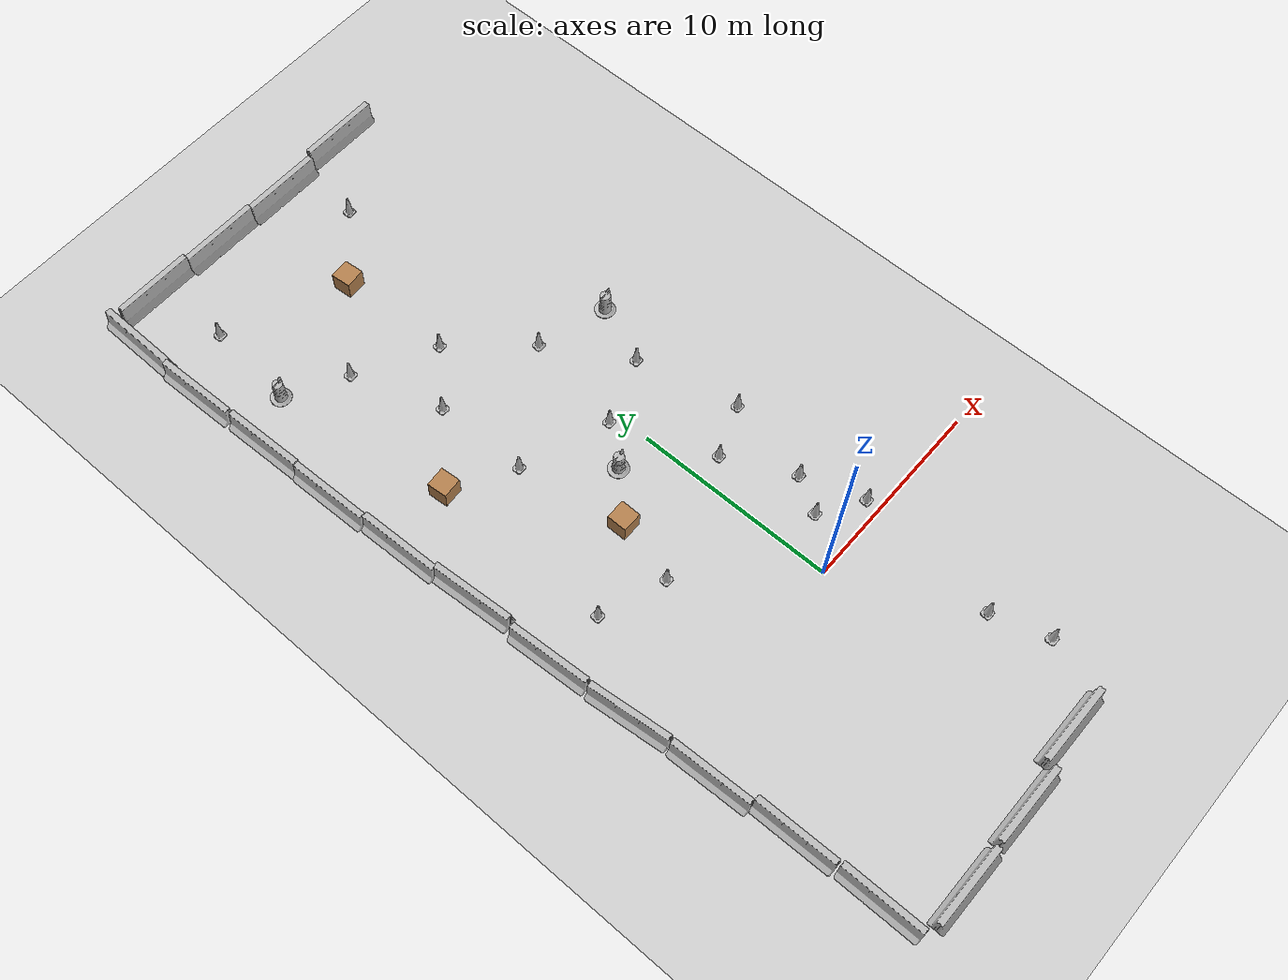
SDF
<sdf version="1.4">
 <world name="default">
  <model name="ground_plane">
   <static>1</static>
   <link name="link">
    <collision name="collision">
     <geometry><plane><normal>0 0 1</normal><size>100 100</size></plane></geometry>
     <surface><friction><ode><mu>100</mu><mu2>50</mu2></ode></friction></surface>
    </collision>
    <visual name="visual">
     <cast_shadows>0</cast_shadows>
     <geometry><plane><normal>0 0 1</normal><size>100 100</size></plane></geometry>
     <material>
      <script><uri>file://media/materials/scripts/gazebo.material</uri><name>Gazebo/Grey</name></script>
     </material>
    </visual>
    <velocity_decay><linear>0</linear><angular>0</angular></velocity_decay>
   </link>
  </model>
  <model name="unit_box_1">
   <pose>-3 26 0.5 0 -0 0.083754</pose>
   <link name="link">
    <inertial>
     <mass>1</mass>
     <inertia><ixx>1</ixx><ixy>0</ixy><ixz>0</ixz><iyy>1</iyy><iyz>0</iyz><izz>1</izz></inertia>
    </inertial>
    <collision name="collision"><geometry><box><size>1 1 1</size></box></geometry></collision>
    <visual name="visual">
     <geometry><box><size>1 1 1</size></box></geometry>
     <material>
      <script><uri>file://media/materials/scripts/gazebo.material</uri><name>Gazebo/Wood</name></script>
     </material>
    </visual>
    <velocity_decay><linear>0</linear><angular>0</angular></velocity_decay>
   </link>
   <static>0</static>
  </model>
  <model name="unit_box_3">
   <pose>-8 15 0.5 0 -0 0.083754</pose>
   <link name="link">
    <inertial>
     <mass>1</mass>
     <inertia><ixx>1</ixx><ixy>0</ixy><ixz>0</ixz><iyy>1</iyy><iyz>0</iyz><izz>1</izz></inertia>
    </inertial>
    <collision name="collision"><geometry><box><size>1 1 1</size></box></geometry></collision>
    <visual name="visual">
     <geometry><box><size>1 1 1</size></box></geometry>
     <material>
      <script><uri>file://media/materials/scripts/gazebo.material</uri><name>Gazebo/Wood</name></script>
     </material>
    </visual>
    <velocity_decay><linear>0</linear><angular>0</angular></velocity_decay>
   </link>
   <static>0</static>
  </model>
  <model name="jersey_barrier">
   <static>1</static>
   <link name="link">
    <visual name="visual">
     <geometry><mesh><uri>model://jersey_barrier/meshes/jersey_barrier.dae</uri></mesh></geometry>
    </visual>
    <collision name="upright">
     <pose>0 0 0.5715 0 -0 0</pose>
     <geometry><box><size>4.06542 0.3063 1.143</size></box></geometry>
    </collision>
    <collision name="base">
     <pose>0 0 0.032258 0 -0 0</pose>
     <geometry><box><size>4.06542 0.8107 0.064516</size></box></geometry>
    </collision>
    <collision name="base2">
     <pose>0 0 0.1 0 -0 0</pose>
     <geometry><box><size>4.06542 0.65 0.1</size></box></geometry>
    </collision>
    <collision name="base3">
     <pose>0 0 0.2 0 -0 0</pose>
     <geometry><box><size>4.06542 0.5 0.1</size></box></geometry>
    </collision>
    <collision name="left-angle">
     <pose>0 -0.224 0.2401 0.9 -0 0</pose>
     <geometry><box><size>4.06542 0.5 0.064516</size></box></geometry>
    </collision>
    <collision name="right-angle">
     <pose>0 0.224 0.2401 -0.9 0 0</pose>
     <geometry><box><size>4.06542 0.5 0.064516</size></box></geometry>
    </collision>
    <velocity_decay><linear>0</linear><angular>0</angular></velocity_decay>
   </link>
   <pose>-7.26215 -12.5985 0 0 -0 0</pose>
  </model>
  <model name="jersey_barrier_0">
   <static>1</static>
   <link name="link">
    <visual name="visual">
     <geometry><mesh><uri>model://jersey_barrier/meshes/jersey_barrier.dae</uri></mesh></geometry>
    </visual>
    <collision name="upright">
     <pose>0 0 0.5715 0 -0 0</pose>
     <geometry><box><size>4.06542 0.3063 1.143</size></box></geometry>
    </collision>
    <collision name="base">
     <pose>0 0 0.032258 0 -0 0</pose>
     <geometry><box><size>4.06542 0.8107 0.064516</size></box></geometry>
    </collision>
    <collision name="base2">
     <pose>0 0 0.1 0 -0 0</pose>
     <geometry><box><size>4.06542 0.65 0.1</size></box></geometry>
    </collision>
    <collision name="base3">
     <pose>0 0 0.2 0 -0 0</pose>
     <geometry><box><size>4.06542 0.5 0.1</size></box></geometry>
    </collision>
    <collision name="left-angle">
     <pose>0 -0.224 0.2401 0.9 -0 0</pose>
     <geometry><box><size>4.06542 0.5 0.064516</size></box></geometry>
    </collision>
    <collision name="right-angle">
     <pose>0 0.224 0.2401 -0.9 0 0</pose>
     <geometry><box><size>4.06542 0.5 0.064516</size></box></geometry>
    </collision>
    <velocity_decay><linear>0</linear><angular>0</angular></velocity_decay>
   </link>
   <pose>-3 -12.5184 0 0 -0 0</pose>
  </model>
  <model name="jersey_barrier_1">
   <static>1</static>
   <link name="link">
    <visual name="visual">
     <geometry><mesh><uri>model://jersey_barrier/meshes/jersey_barrier.dae</uri></mesh></geometry>
    </visual>
    <collision name="upright">
     <pose>0 0 0.5715 0 -0 0</pose>
     <geometry><box><size>4.06542 0.3063 1.143</size></box></geometry>
    </collision>
    <collision name="base">
     <pose>0 0 0.032258 0 -0 0</pose>
     <geometry><box><size>4.06542 0.8107 0.064516</size></box></geometry>
    </collision>
    <collision name="base2">
     <pose>0 0 0.1 0 -0 0</pose>
     <geometry><box><size>4.06542 0.65 0.1</size></box></geometry>
    </collision>
    <collision name="base3">
     <pose>0 0 0.2 0 -0 0</pose>
     <geometry><box><size>4.06542 0.5 0.1</size></box></geometry>
    </collision>
    <collision name="left-angle">
     <pose>0 -0.224 0.2401 0.9 -0 0</pose>
     <geometry><box><size>4.06542 0.5 0.064516</size></box></geometry>
    </collision>
    <collision name="right-angle">
     <pose>0 0.224 0.2401 -0.9 0 0</pose>
     <geometry><box><size>4.06542 0.5 0.064516</size></box></geometry>
    </collision>
    <velocity_decay><linear>0</linear><angular>0</angular></velocity_decay>
   </link>
   <pose>1 -12 0 0 -0 0</pose>
  </model>
  <model name="jersey_barrier_5">
   <static>1</static>
   <link name="link">
    <visual name="visual">
     <geometry><mesh><uri>model://jersey_barrier/meshes/jersey_barrier.dae</uri></mesh></geometry>
    </visual>
    <collision name="upright">
     <pose>0 0 0.5715 0 -0 0</pose>
     <geometry><box><size>4.06542 0.3063 1.143</size></box></geometry>
    </collision>
    <collision name="base">
     <pose>0 0 0.032258 0 -0 0</pose>
     <geometry><box><size>4.06542 0.8107 0.064516</size></box></geometry>
    </collision>
    <collision name="base2">
     <pose>0 0 0.1 0 -0 0</pose>
     <geometry><box><size>4.06542 0.65 0.1</size></box></geometry>
    </collision>
    <collision name="base3">
     <pose>0 0 0.2 0 -0 0</pose>
     <geometry><box><size>4.06542 0.5 0.1</size></box></geometry>
    </collision>
    <collision name="left-angle">
     <pose>0 -0.224 0.2401 0.9 -0 0</pose>
     <geometry><box><size>4.06542 0.5 0.064516</size></box></geometry>
    </collision>
    <collision name="right-angle">
     <pose>0 0.224 0.2401 -0.9 0 0</pose>
     <geometry><box><size>4.06542 0.5 0.064516</size></box></geometry>
    </collision>
    <velocity_decay><linear>0</linear><angular>0</angular></velocity_decay>
   </link>
   <pose>-9.43035 32.377 0 0 -0 0</pose>
  </model>
  <model name="jersey_barrier_6">
   <static>1</static>
   <link name="link">
    <visual name="visual">
     <geometry><mesh><uri>model://jersey_barrier/meshes/jersey_barrier.dae</uri></mesh></geometry>
    </visual>
    <collision name="upright">
     <pose>0 0 0.5715 0 -0 0</pose>
     <geometry><box><size>4.06542 0.3063 1.143</size></box></geometry>
    </collision>
    <collision name="base">
     <pose>0 0 0.032258 0 -0 0</pose>
     <geometry><box><size>4.06542 0.8107 0.064516</size></box></geometry>
    </collision>
    <collision name="base2">
     <pose>0 0 0.1 0 -0 0</pose>
     <geometry><box><size>4.06542 0.65 0.1</size></box></geometry>
    </collision>
    <collision name="base3">
     <pose>0 0 0.2 0 -0 0</pose>
     <geometry><box><size>4.06542 0.5 0.1</size></box></geometry>
    </collision>
    <collision name="left-angle">
     <pose>0 -0.224 0.2401 0.9 -0 0</pose>
     <geometry><box><size>4.06542 0.5 0.064516</size></box></geometry>
    </collision>
    <collision name="right-angle">
     <pose>0 0.224 0.2401 -0.9 0 0</pose>
     <geometry><box><size>4.06542 0.5 0.064516</size></box></geometry>
    </collision>
    <velocity_decay><linear>0</linear><angular>0</angular></velocity_decay>
   </link>
   <pose>-5.41368 32.195 0 0 -0 0</pose>
  </model>
  <model name="jersey_barrier_7">
   <static>1</static>
   <link name="link">
    <visual name="visual">
     <geometry><mesh><uri>model://jersey_barrier/meshes/jersey_barrier.dae</uri></mesh></geometry>
    </visual>
    <collision name="upright">
     <pose>0 0 0.5715 0 -0 0</pose>
     <geometry><box><size>4.06542 0.3063 1.143</size></box></geometry>
    </collision>
    <collision name="base">
     <pose>0 0 0.032258 0 -0 0</pose>
     <geometry><box><size>4.06542 0.8107 0.064516</size></box></geometry>
    </collision>
    <collision name="base2">
     <pose>0 0 0.1 0 -0 0</pose>
     <geometry><box><size>4.06542 0.65 0.1</size></box></geometry>
    </collision>
    <collision name="base3">
     <pose>0 0 0.2 0 -0 0</pose>
     <geometry><box><size>4.06542 0.5 0.1</size></box></geometry>
    </collision>
    <collision name="left-angle">
     <pose>0 -0.224 0.2401 0.9 -0 0</pose>
     <geometry><box><size>4.06542 0.5 0.064516</size></box></geometry>
    </collision>
    <collision name="right-angle">
     <pose>0 0.224 0.2401 -0.9 0 0</pose>
     <geometry><box><size>4.06542 0.5 0.064516</size></box></geometry>
    </collision>
    <velocity_decay><linear>0</linear><angular>0</angular></velocity_decay>
   </link>
   <pose>-1.41387 32.1048 0 0 -0 0</pose>
  </model>
  <model name="jersey_barrier_8">
   <static>1</static>
   <link name="link">
    <visual name="visual">
     <geometry><mesh><uri>model://jersey_barrier/meshes/jersey_barrier.dae</uri></mesh></geometry>
    </visual>
    <collision name="upright">
     <pose>0 0 0.5715 0 -0 0</pose>
     <geometry><box><size>4.06542 0.3063 1.143</size></box></geometry>
    </collision>
    <collision name="base">
     <pose>0 0 0.032258 0 -0 0</pose>
     <geometry><box><size>4.06542 0.8107 0.064516</size></box></geometry>
    </collision>
    <collision name="base2">
     <pose>0 0 0.1 0 -0 0</pose>
     <geometry><box><size>4.06542 0.65 0.1</size></box></geometry>
    </collision>
    <collision name="base3">
     <pose>0 0 0.2 0 -0 0</pose>
     <geometry><box><size>4.06542 0.5 0.1</size></box></geometry>
    </collision>
    <collision name="left-angle">
     <pose>0 -0.224 0.2401 0.9 -0 0</pose>
     <geometry><box><size>4.06542 0.5 0.064516</size></box></geometry>
    </collision>
    <collision name="right-angle">
     <pose>0 0.224 0.2401 -0.9 0 0</pose>
     <geometry><box><size>4.06542 0.5 0.064516</size></box></geometry>
    </collision>
    <velocity_decay><linear>0</linear><angular>0</angular></velocity_decay>
   </link>
   <pose>2.78467 32.4012 0 0 -0 0</pose>
  </model>
  <model name="jersey_barrier_15">
   <static>1</static>
   <link name="link">
    <visual name="visual">
     <geometry><mesh><uri>model://jersey_barrier/meshes/jersey_barrier.dae</uri></mesh></geometry>
    </visual>
    <collision name="upright">
     <pose>0 0 0.5715 0 -0 0</pose>
     <geometry><box><size>4.06542 0.3063 1.143</size></box></geometry>
    </collision>
    <collision name="base">
     <pose>0 0 0.032258 0 -0 0</pose>
     <geometry><box><size>4.06542 0.8107 0.064516</size></box></geometry>
    </collision>
    <collision name="base2">
     <pose>0 0 0.1 0 -0 0</pose>
     <geometry><box><size>4.06542 0.65 0.1</size></box></geometry>
    </collision>
    <collision name="base3">
     <pose>0 0 0.2 0 -0 0</pose>
     <geometry><box><size>4.06542 0.5 0.1</size></box></geometry>
    </collision>
    <collision name="left-angle">
     <pose>0 -0.224 0.2401 0.9 -0 0</pose>
     <geometry><box><size>4.06542 0.5 0.064516</size></box></geometry>
    </collision>
    <collision name="right-angle">
     <pose>0 0.224 0.2401 -0.9 0 0</pose>
     <geometry><box><size>4.06542 0.5 0.064516</size></box></geometry>
    </collision>
    <velocity_decay><linear>0</linear><angular>0</angular></velocity_decay>
   </link>
   <pose>-10.907 6.17584 0 0 -0 1.63254</pose>
  </model>
  <model name="jersey_barrier_16">
   <static>1</static>
   <link name="link">
    <visual name="visual">
     <geometry><mesh><uri>model://jersey_barrier/meshes/jersey_barrier.dae</uri></mesh></geometry>
    </visual>
    <collision name="upright">
     <pose>0 0 0.5715 0 -0 0</pose>
     <geometry><box><size>4.06542 0.3063 1.143</size></box></geometry>
    </collision>
    <collision name="base">
     <pose>0 0 0.032258 0 -0 0</pose>
     <geometry><box><size>4.06542 0.8107 0.064516</size></box></geometry>
    </collision>
    <collision name="base2">
     <pose>0 0 0.1 0 -0 0</pose>
     <geometry><box><size>4.06542 0.65 0.1</size></box></geometry>
    </collision>
    <collision name="base3">
     <pose>0 0 0.2 0 -0 0</pose>
     <geometry><box><size>4.06542 0.5 0.1</size></box></geometry>
    </collision>
    <collision name="left-angle">
     <pose>0 -0.224 0.2401 0.9 -0 0</pose>
     <geometry><box><size>4.06542 0.5 0.064516</size></box></geometry>
    </collision>
    <collision name="right-angle">
     <pose>0 0.224 0.2401 -0.9 0 0</pose>
     <geometry><box><size>4.06542 0.5 0.064516</size></box></geometry>
    </collision>
    <velocity_decay><linear>0</linear><angular>0</angular></velocity_decay>
   </link>
   <pose>-10.6126 2.01572 0 0 -0 1.67324</pose>
  </model>
  <model name="jersey_barrier_17">
   <static>1</static>
   <link name="link">
    <visual name="visual">
     <geometry><mesh><uri>model://jersey_barrier/meshes/jersey_barrier.dae</uri></mesh></geometry>
    </visual>
    <collision name="upright">
     <pose>0 0 0.5715 0 -0 0</pose>
     <geometry><box><size>4.06542 0.3063 1.143</size></box></geometry>
    </collision>
    <collision name="base">
     <pose>0 0 0.032258 0 -0 0</pose>
     <geometry><box><size>4.06542 0.8107 0.064516</size></box></geometry>
    </collision>
    <collision name="base2">
     <pose>0 0 0.1 0 -0 0</pose>
     <geometry><box><size>4.06542 0.65 0.1</size></box></geometry>
    </collision>
    <collision name="base3">
     <pose>0 0 0.2 0 -0 0</pose>
     <geometry><box><size>4.06542 0.5 0.1</size></box></geometry>
    </collision>
    <collision name="left-angle">
     <pose>0 -0.224 0.2401 0.9 -0 0</pose>
     <geometry><box><size>4.06542 0.5 0.064516</size></box></geometry>
    </collision>
    <collision name="right-angle">
     <pose>0 0.224 0.2401 -0.9 0 0</pose>
     <geometry><box><size>4.06542 0.5 0.064516</size></box></geometry>
    </collision>
    <velocity_decay><linear>0</linear><angular>0</angular></velocity_decay>
   </link>
   <pose>-10.3644 -2.14271 0 0 -0 1.60702</pose>
  </model>
  <model name="jersey_barrier_18">
   <static>1</static>
   <link name="link">
    <visual name="visual">
     <geometry><mesh><uri>model://jersey_barrier/meshes/jersey_barrier.dae</uri></mesh></geometry>
    </visual>
    <collision name="upright">
     <pose>0 0 0.5715 0 -0 0</pose>
     <geometry><box><size>4.06542 0.3063 1.143</size></box></geometry>
    </collision>
    <collision name="base">
     <pose>0 0 0.032258 0 -0 0</pose>
     <geometry><box><size>4.06542 0.8107 0.064516</size></box></geometry>
    </collision>
    <collision name="base2">
     <pose>0 0 0.1 0 -0 0</pose>
     <geometry><box><size>4.06542 0.65 0.1</size></box></geometry>
    </collision>
    <collision name="base3">
     <pose>0 0 0.2 0 -0 0</pose>
     <geometry><box><size>4.06542 0.5 0.1</size></box></geometry>
    </collision>
    <collision name="left-angle">
     <pose>0 -0.224 0.2401 0.9 -0 0</pose>
     <geometry><box><size>4.06542 0.5 0.064516</size></box></geometry>
    </collision>
    <collision name="right-angle">
     <pose>0 0.224 0.2401 -0.9 0 0</pose>
     <geometry><box><size>4.06542 0.5 0.064516</size></box></geometry>
    </collision>
    <velocity_decay><linear>0</linear><angular>0</angular></velocity_decay>
   </link>
   <pose>-9.98265 -6.18571 0 0 -0 1.58701</pose>
  </model>
  <model name="jersey_barrier_19">
   <static>1</static>
   <link name="link">
    <visual name="visual">
     <geometry><mesh><uri>model://jersey_barrier/meshes/jersey_barrier.dae</uri></mesh></geometry>
    </visual>
    <collision name="upright">
     <pose>0 0 0.5715 0 -0 0</pose>
     <geometry><box><size>4.06542 0.3063 1.143</size></box></geometry>
    </collision>
    <collision name="base">
     <pose>0 0 0.032258 0 -0 0</pose>
     <geometry><box><size>4.06542 0.8107 0.064516</size></box></geometry>
    </collision>
    <collision name="base2">
     <pose>0 0 0.1 0 -0 0</pose>
     <geometry><box><size>4.06542 0.65 0.1</size></box></geometry>
    </collision>
    <collision name="base3">
     <pose>0 0 0.2 0 -0 0</pose>
     <geometry><box><size>4.06542 0.5 0.1</size></box></geometry>
    </collision>
    <collision name="left-angle">
     <pose>0 -0.224 0.2401 0.9 -0 0</pose>
     <geometry><box><size>4.06542 0.5 0.064516</size></box></geometry>
    </collision>
    <collision name="right-angle">
     <pose>0 0.224 0.2401 -0.9 0 0</pose>
     <geometry><box><size>4.06542 0.5 0.064516</size></box></geometry>
    </collision>
    <velocity_decay><linear>0</linear><angular>0</angular></velocity_decay>
   </link>
   <pose>-9.85449 -10.3717 0 0 -0 1.57336</pose>
  </model>
  <model name="jersey_barrier_21">
   <static>1</static>
   <link name="link">
    <visual name="visual">
     <geometry><mesh><uri>model://jersey_barrier/meshes/jersey_barrier.dae</uri></mesh></geometry>
    </visual>
    <collision name="upright">
     <pose>0 0 0.5715 0 -0 0</pose>
     <geometry><box><size>4.06542 0.3063 1.143</size></box></geometry>
    </collision>
    <collision name="base">
     <pose>0 0 0.032258 0 -0 0</pose>
     <geometry><box><size>4.06542 0.8107 0.064516</size></box></geometry>
    </collision>
    <collision name="base2">
     <pose>0 0 0.1 0 -0 0</pose>
     <geometry><box><size>4.06542 0.65 0.1</size></box></geometry>
    </collision>
    <collision name="base3">
     <pose>0 0 0.2 0 -0 0</pose>
     <geometry><box><size>4.06542 0.5 0.1</size></box></geometry>
    </collision>
    <collision name="left-angle">
     <pose>0 -0.224 0.2401 0.9 -0 0</pose>
     <geometry><box><size>4.06542 0.5 0.064516</size></box></geometry>
    </collision>
    <collision name="right-angle">
     <pose>0 0.224 0.2401 -0.9 0 0</pose>
     <geometry><box><size>4.06542 0.5 0.064516</size></box></geometry>
    </collision>
    <velocity_decay><linear>0</linear><angular>0</angular></velocity_decay>
   </link>
   <pose>-10.9991 10.488 0 0 -0 1.64124</pose>
  </model>
  <model name="Construction Cone_2">
   <link name="link">
    <collision name="collision">
     <geometry>
      <mesh><scale>10 10 10</scale><uri>model://construction_cone/meshes/construction_cone.dae</uri></mesh>
     </geometry>
    </collision>
    <visual name="visual">
     <geometry>
      <mesh><scale>10 10 10</scale><uri>model://construction_cone/meshes/construction_cone.dae</uri></mesh>
     </geometry>
    </visual>
    <velocity_decay><linear>0</linear><angular>0</angular></velocity_decay>
    <inertial>
     <inertia><ixx>1</ixx><ixy>0</ixy><ixz>0</ixz><iyy>1</iyy><iyz>0</iyz><izz>1</izz></inertia>
     <mass>1</mass>
    </inertial>
   </link>
   <pose>2.80714 13.059 0 1e-06 -0 0</pose>
   <static>0</static>
  </model>
  <model name="Construction Cone_6">
   <link name="link">
    <collision name="collision">
     <geometry>
      <mesh><scale>10 10 10</scale><uri>model://construction_cone/meshes/construction_cone.dae</uri></mesh>
     </geometry>
    </collision>
    <visual name="visual">
     <geometry>
      <mesh><scale>10 10 10</scale><uri>model://construction_cone/meshes/construction_cone.dae</uri></mesh>
     </geometry>
    </visual>
    <velocity_decay><linear>0</linear><angular>0</angular></velocity_decay>
    <inertial>
     <inertia><ixx>1</ixx><ixy>0</ixy><ixz>0</ixz><iyy>1</iyy><iyz>0</iyz><izz>1</izz></inertia>
     <mass>1</mass>
    </inertial>
   </link>
   <pose>-4.93524 13.3394 -2e-06 0 1e-06 0</pose>
   <static>0</static>
  </model>
  <model name="Construction Cone_8">
   <link name="link">
    <collision name="collision">
     <geometry>
      <mesh><scale>10 10 10</scale><uri>model://construction_cone/meshes/construction_cone.dae</uri></mesh>
     </geometry>
    </collision>
    <visual name="visual">
     <geometry>
      <mesh><scale>10 10 10</scale><uri>model://construction_cone/meshes/construction_cone.dae</uri></mesh>
     </geometry>
    </visual>
    <velocity_decay><linear>0</linear><angular>0</angular></velocity_decay>
    <inertial>
     <inertia><ixx>1</ixx><ixy>0</ixy><ixz>0</ixz><iyy>1</iyy><iyz>0</iyz><izz>1</izz></inertia>
     <mass>1</mass>
    </inertial>
   </link>
   <pose>-6.51042 22.4224 -2e-06 -1e-06 -0 -0</pose>
   <static>0</static>
  </model>
  <model name="Construction Cone_9">
   <link name="link">
    <collision name="collision">
     <geometry>
      <mesh><scale>10 10 10</scale><uri>model://construction_cone/meshes/construction_cone.dae</uri></mesh>
     </geometry>
    </collision>
    <visual name="visual">
     <geometry>
      <mesh><scale>10 10 10</scale><uri>model://construction_cone/meshes/construction_cone.dae</uri></mesh>
     </geometry>
    </visual>
    <velocity_decay><linear>0</linear><angular>0</angular></velocity_decay>
    <inertial>
     <inertia><ixx>1</ixx><ixy>0</ixy><ixz>0</ixz><iyy>1</iyy><iyz>0</iyz><izz>1</izz></inertia>
     <mass>1</mass>
    </inertial>
   </link>
   <pose>-4.76601 4.88386 -1e-06 -2e-06 -1e-06 8.07794e-28</pose>
   <static>0</static>
  </model>
  <model name="Construction Cone_10">
   <link name="link">
    <collision name="collision">
     <geometry>
      <mesh><scale>10 10 10</scale><uri>model://construction_cone/meshes/construction_cone.dae</uri></mesh>
     </geometry>
    </collision>
    <visual name="visual">
     <geometry>
      <mesh><scale>10 10 10</scale><uri>model://construction_cone/meshes/construction_cone.dae</uri></mesh>
     </geometry>
    </visual>
    <velocity_decay><linear>0</linear><angular>0</angular></velocity_decay>
    <inertial>
     <inertia><ixx>1</ixx><ixy>0</ixy><ixz>0</ixz><iyy>1</iyy><iyz>0</iyz><izz>1</izz></inertia>
     <mass>1</mass>
    </inertial>
   </link>
   <pose>3.03317 3.70489 -0 0 -1e-06 0</pose>
   <static>0</static>
  </model>
  <model name="Construction Cone_12">
   <link name="link">
    <collision name="collision">
     <geometry>
      <mesh><scale>10 10 10</scale><uri>model://construction_cone/meshes/construction_cone.dae</uri></mesh>
     </geometry>
    </collision>
    <visual name="visual">
     <geometry>
      <mesh><scale>10 10 10</scale><uri>model://construction_cone/meshes/construction_cone.dae</uri></mesh>
     </geometry>
    </visual>
    <velocity_decay><linear>0</linear><angular>0</angular></velocity_decay>
    <inertial>
     <inertia><ixx>1</ixx><ixy>0</ixy><ixz>0</ixz><iyy>1</iyy><iyz>0</iyz><izz>1</izz></inertia>
     <mass>1</mass>
    </inertial>
   </link>
   <pose>-0.487795 11.8459 -0 0 -1e-06 0</pose>
   <static>0</static>
  </model>
  <model name="Construction Cone_15">
   <link name="link">
    <collision name="collision">
     <geometry>
      <mesh><scale>10 10 10</scale><uri>model://construction_cone/meshes/construction_cone.dae</uri></mesh>
     </geometry>
    </collision>
    <visual name="visual">
     <geometry>
      <mesh><scale>10 10 10</scale><uri>model://construction_cone/meshes/construction_cone.dae</uri></mesh>
     </geometry>
    </visual>
    <velocity_decay><linear>0</linear><angular>0</angular></velocity_decay>
    <inertial>
     <inertia><ixx>1</ixx><ixy>0</ixy><ixz>0</ixz><iyy>1</iyy><iyz>0</iyz><izz>1</izz></inertia>
     <mass>1</mass>
    </inertial>
   </link>
   <pose>3.98191 -9.1742 -6e-06 5e-06 -7e-06 0</pose>
   <static>0</static>
  </model>
  <model name="Construction Cone_17">
   <link name="link">
    <collision name="collision">
     <geometry>
      <mesh><scale>10 10 10</scale><uri>model://construction_cone/meshes/construction_cone.dae</uri></mesh>
     </geometry>
    </collision>
    <visual name="visual">
     <geometry>
      <mesh><scale>10 10 10</scale><uri>model://construction_cone/meshes/construction_cone.dae</uri></mesh>
     </geometry>
    </visual>
    <velocity_decay><linear>0</linear><angular>0</angular></velocity_decay>
    <inertial>
     <inertia><ixx>1</ixx><ixy>0</ixy><ixz>0</ixz><iyy>1</iyy><iyz>0</iyz><izz>1</izz></inertia>
     <mass>1</mass>
    </inertial>
   </link>
   <pose>2 2 -1e-06 -2e-06 -3e-06 0</pose>
   <static>0</static>
  </model>
  <model name="Construction Cone_18">
   <link name="link">
    <collision name="collision">
     <geometry>
      <mesh><scale>10 10 10</scale><uri>model://construction_cone/meshes/construction_cone.dae</uri></mesh>
     </geometry>
    </collision>
    <visual name="visual">
     <geometry>
      <mesh><scale>10 10 10</scale><uri>model://construction_cone/meshes/construction_cone.dae</uri></mesh>
     </geometry>
    </visual>
    <velocity_decay><linear>0</linear><angular>0</angular></velocity_decay>
    <inertial>
     <inertia><ixx>1</ixx><ixy>0</ixy><ixz>0</ixz><iyy>1</iyy><iyz>0</iyz><izz>1</izz></inertia>
     <mass>1</mass>
    </inertial>
   </link>
   <pose>3.14498 -6.43429 -6e-06 -7e-06 0 0</pose>
   <static>0</static>
  </model>
  <model name="Construction Cone_20">
   <link name="link">
    <collision name="collision">
     <geometry>
      <mesh><scale>10 10 10</scale><uri>model://construction_cone/meshes/construction_cone.dae</uri></mesh>
     </geometry>
    </collision>
    <visual name="visual">
     <geometry>
      <mesh><scale>10 10 10</scale><uri>model://construction_cone/meshes/construction_cone.dae</uri></mesh>
     </geometry>
    </visual>
    <velocity_decay><linear>0</linear><angular>0</angular></velocity_decay>
    <inertial>
     <inertia><ixx>1</ixx><ixy>0</ixy><ixz>0</ixz><iyy>1</iyy><iyz>0</iyz><izz>1</izz></inertia>
     <mass>1</mass>
    </inertial>
   </link>
   <pose>1.42672 7 -0 0 -1e-06 0</pose>
   <static>0</static>
  </model>
  <model name="Construction Cone_23">
   <link name="link">
    <collision name="collision">
     <geometry>
      <mesh><scale>10 10 10</scale><uri>model://construction_cone/meshes/construction_cone.dae</uri></mesh>
     </geometry>
    </collision>
    <visual name="visual">
     <geometry>
      <mesh><scale>10 10 10</scale><uri>model://construction_cone/meshes/construction_cone.dae</uri></mesh>
     </geometry>
    </visual>
    <velocity_decay><linear>0</linear><angular>0</angular></velocity_decay>
    <inertial>
     <inertia><ixx>1</ixx><ixy>0</ixy><ixz>0</ixz><iyy>1</iyy><iyz>0</iyz><izz>1</izz></inertia>
     <mass>1</mass>
    </inertial>
   </link>
   <pose>4.05878 0.703394 -0 0 -1e-06 0</pose>
   <static>0</static>
  </model>
  <model name="jersey_barrier_22">
   <static>1</static>
   <link name="link">
    <visual name="visual">
     <geometry><mesh><uri>model://jersey_barrier/meshes/jersey_barrier.dae</uri></mesh></geometry>
    </visual>
    <collision name="upright">
     <pose>0 0 0.5715 0 -0 0</pose>
     <geometry><box><size>4.06542 0.3063 1.143</size></box></geometry>
    </collision>
    <collision name="base">
     <pose>0 0 0.032258 0 -0 0</pose>
     <geometry><box><size>4.06542 0.8107 0.064516</size></box></geometry>
    </collision>
    <collision name="base2">
     <pose>0 0 0.1 0 -0 0</pose>
     <geometry><box><size>4.06542 0.65 0.1</size></box></geometry>
    </collision>
    <collision name="base3">
     <pose>0 0 0.2 0 -0 0</pose>
     <geometry><box><size>4.06542 0.5 0.1</size></box></geometry>
    </collision>
    <collision name="left-angle">
     <pose>0 -0.224 0.2401 0.9 -0 0</pose>
     <geometry><box><size>4.06542 0.5 0.064516</size></box></geometry>
    </collision>
    <collision name="right-angle">
     <pose>0 0.224 0.2401 -0.9 0 0</pose>
     <geometry><box><size>4.06542 0.5 0.064516</size></box></geometry>
    </collision>
    <velocity_decay><linear>0</linear><angular>0</angular></velocity_decay>
   </link>
   <pose>-11.8547 30.7836 0 0 0 -1.58119</pose>
  </model>
  <model name="jersey_barrier_23">
   <static>1</static>
   <link name="link">
    <visual name="visual">
     <geometry><mesh><uri>model://jersey_barrier/meshes/jersey_barrier.dae</uri></mesh></geometry>
    </visual>
    <collision name="upright">
     <pose>0 0 0.5715 0 -0 0</pose>
     <geometry><box><size>4.06542 0.3063 1.143</size></box></geometry>
    </collision>
    <collision name="base">
     <pose>0 0 0.032258 0 -0 0</pose>
     <geometry><box><size>4.06542 0.8107 0.064516</size></box></geometry>
    </collision>
    <collision name="base2">
     <pose>0 0 0.1 0 -0 0</pose>
     <geometry><box><size>4.06542 0.65 0.1</size></box></geometry>
    </collision>
    <collision name="base3">
     <pose>0 0 0.2 0 -0 0</pose>
     <geometry><box><size>4.06542 0.5 0.1</size></box></geometry>
    </collision>
    <collision name="left-angle">
     <pose>0 -0.224 0.2401 0.9 -0 0</pose>
     <geometry><box><size>4.06542 0.5 0.064516</size></box></geometry>
    </collision>
    <collision name="right-angle">
     <pose>0 0.224 0.2401 -0.9 0 0</pose>
     <geometry><box><size>4.06542 0.5 0.064516</size></box></geometry>
    </collision>
    <velocity_decay><linear>0</linear><angular>0</angular></velocity_decay>
   </link>
   <pose>-11.7126 22.5439 0 0 0 -1.53593</pose>
  </model>
  <model name="jersey_barrier_24">
   <static>1</static>
   <link name="link">
    <visual name="visual">
     <geometry><mesh><uri>model://jersey_barrier/meshes/jersey_barrier.dae</uri></mesh></geometry>
    </visual>
    <collision name="upright">
     <pose>0 0 0.5715 0 -0 0</pose>
     <geometry><box><size>4.06542 0.3063 1.143</size></box></geometry>
    </collision>
    <collision name="base">
     <pose>0 0 0.032258 0 -0 0</pose>
     <geometry><box><size>4.06542 0.8107 0.064516</size></box></geometry>
    </collision>
    <collision name="base2">
     <pose>0 0 0.1 0 -0 0</pose>
     <geometry><box><size>4.06542 0.65 0.1</size></box></geometry>
    </collision>
    <collision name="base3">
     <pose>0 0 0.2 0 -0 0</pose>
     <geometry><box><size>4.06542 0.5 0.1</size></box></geometry>
    </collision>
    <collision name="left-angle">
     <pose>0 -0.224 0.2401 0.9 -0 0</pose>
     <geometry><box><size>4.06542 0.5 0.064516</size></box></geometry>
    </collision>
    <collision name="right-angle">
     <pose>0 0.224 0.2401 -0.9 0 0</pose>
     <geometry><box><size>4.06542 0.5 0.064516</size></box></geometry>
    </collision>
    <velocity_decay><linear>0</linear><angular>0</angular></velocity_decay>
   </link>
   <pose>-11.6255 18.4957 0 0 0 -1.53985</pose>
  </model>
  <model name="jersey_barrier_25">
   <static>1</static>
   <link name="link">
    <visual name="visual">
     <geometry><mesh><uri>model://jersey_barrier/meshes/jersey_barrier.dae</uri></mesh></geometry>
    </visual>
    <collision name="upright">
     <pose>0 0 0.5715 0 -0 0</pose>
     <geometry><box><size>4.06542 0.3063 1.143</size></box></geometry>
    </collision>
    <collision name="base">
     <pose>0 0 0.032258 0 -0 0</pose>
     <geometry><box><size>4.06542 0.8107 0.064516</size></box></geometry>
    </collision>
    <collision name="base2">
     <pose>0 0 0.1 0 -0 0</pose>
     <geometry><box><size>4.06542 0.65 0.1</size></box></geometry>
    </collision>
    <collision name="base3">
     <pose>0 0 0.2 0 -0 0</pose>
     <geometry><box><size>4.06542 0.5 0.1</size></box></geometry>
    </collision>
    <collision name="left-angle">
     <pose>0 -0.224 0.2401 0.9 -0 0</pose>
     <geometry><box><size>4.06542 0.5 0.064516</size></box></geometry>
    </collision>
    <collision name="right-angle">
     <pose>0 0.224 0.2401 -0.9 0 0</pose>
     <geometry><box><size>4.06542 0.5 0.064516</size></box></geometry>
    </collision>
    <velocity_decay><linear>0</linear><angular>0</angular></velocity_decay>
   </link>
   <pose>-11.3694 14.4529 0 0 0 -1.53529</pose>
  </model>
  <model name="jersey_barrier_26">
   <static>1</static>
   <link name="link">
    <visual name="visual">
     <geometry><mesh><uri>model://jersey_barrier/meshes/jersey_barrier.dae</uri></mesh></geometry>
    </visual>
    <collision name="upright">
     <pose>0 0 0.5715 0 -0 0</pose>
     <geometry><box><size>4.06542 0.3063 1.143</size></box></geometry>
    </collision>
    <collision name="base">
     <pose>0 0 0.032258 0 -0 0</pose>
     <geometry><box><size>4.06542 0.8107 0.064516</size></box></geometry>
    </collision>
    <collision name="base2">
     <pose>0 0 0.1 0 -0 0</pose>
     <geometry><box><size>4.06542 0.65 0.1</size></box></geometry>
    </collision>
    <collision name="base3">
     <pose>0 0 0.2 0 -0 0</pose>
     <geometry><box><size>4.06542 0.5 0.1</size></box></geometry>
    </collision>
    <collision name="left-angle">
     <pose>0 -0.224 0.2401 0.9 -0 0</pose>
     <geometry><box><size>4.06542 0.5 0.064516</size></box></geometry>
    </collision>
    <collision name="right-angle">
     <pose>0 0.224 0.2401 -0.9 0 0</pose>
     <geometry><box><size>4.06542 0.5 0.064516</size></box></geometry>
    </collision>
    <velocity_decay><linear>0</linear><angular>0</angular></velocity_decay>
   </link>
   <pose>-11.8963 26.7338 0 0 0 -1.54012</pose>
  </model>
  <model name="Construction Cone_24">
   <link name="link">
    <collision name="collision">
     <geometry>
      <mesh><scale>10 10 10</scale><uri>model://construction_cone/meshes/construction_cone.dae</uri></mesh>
     </geometry>
    </collision>
    <visual name="visual">
     <geometry>
      <mesh><scale>10 10 10</scale><uri>model://construction_cone/meshes/construction_cone.dae</uri></mesh>
     </geometry>
    </visual>
    <velocity_decay><linear>0</linear><angular>0</angular></velocity_decay>
    <inertial>
     <inertia><ixx>1</ixx><ixy>0</ixy><ixz>0</ixz><iyy>1</iyy><iyz>0</iyz><izz>1</izz></inertia>
     <mass>1</mass>
    </inertial>
   </link>
   <pose>-2.65659 20.4095 -0 0 -1e-06 0</pose>
   <static>0</static>
  </model>
  <model name="Construction Cone_25">
   <link name="link">
    <collision name="collision">
     <geometry>
      <mesh><scale>10 10 10</scale><uri>model://construction_cone/meshes/construction_cone.dae</uri></mesh>
     </geometry>
    </collision>
    <visual name="visual">
     <geometry>
      <mesh><scale>10 10 10</scale><uri>model://construction_cone/meshes/construction_cone.dae</uri></mesh>
     </geometry>
    </visual>
    <velocity_decay><linear>0</linear><angular>0</angular></velocity_decay>
    <inertial>
     <inertia><ixx>1</ixx><ixy>0</ixy><ixz>0</ixz><iyy>1</iyy><iyz>0</iyz><izz>1</izz></inertia>
     <mass>1</mass>
    </inertial>
   </link>
   <pose>4 8 -1e-06 -1e-06 -1e-06 0</pose>
   <static>0</static>
  </model>
  <model name="Construction Cone_29">
   <link name="link">
    <collision name="collision">
     <geometry>
      <mesh><scale>10 10 10</scale><uri>model://construction_cone/meshes/construction_cone.dae</uri></mesh>
     </geometry>
    </collision>
    <visual name="visual">
     <geometry>
      <mesh><scale>10 10 10</scale><uri>model://construction_cone/meshes/construction_cone.dae</uri></mesh>
     </geometry>
    </visual>
    <velocity_decay><linear>0</linear><angular>0</angular></velocity_decay>
    <inertial>
     <inertia><ixx>1</ixx><ixy>0</ixy><ixz>0</ixz><iyy>1</iyy><iyz>0</iyz><izz>1</izz></inertia>
     <mass>1</mass>
    </inertial>
   </link>
   <pose>-8 6 0 1e-06 -0 0</pose>
   <static>0</static>
  </model>
  <model name="Construction Cone_51">
   <link name="link">
    <collision name="collision">
     <geometry>
      <mesh><scale>10 10 10</scale><uri>model://construction_cone/meshes/construction_cone.dae</uri></mesh>
     </geometry>
    </collision>
    <visual name="visual">
     <geometry>
      <mesh><scale>10 10 10</scale><uri>model://construction_cone/meshes/construction_cone.dae</uri></mesh>
     </geometry>
    </visual>
    <velocity_decay><linear>0</linear><angular>0</angular></velocity_decay>
    <inertial>
     <inertia><ixx>1</ixx><ixy>0</ixy><ixz>0</ixz><iyy>1</iyy><iyz>0</iyz><izz>1</izz></inertia>
     <mass>1</mass>
    </inertial>
   </link>
   <pose>0.441084 17 -8e-06 0 -1e-06 0</pose>
   <static>0</static>
  </model>
  <model name="Construction Cone_60">
   <link name="link">
    <collision name="collision">
     <geometry>
      <mesh><scale>10 10 10</scale><uri>model://construction_cone/meshes/construction_cone.dae</uri></mesh>
     </geometry>
    </collision>
    <visual name="visual">
     <geometry>
      <mesh><scale>10 10 10</scale><uri>model://construction_cone/meshes/construction_cone.dae</uri></mesh>
     </geometry>
    </visual>
    <velocity_decay><linear>0</linear><angular>0</angular></velocity_decay>
    <inertial>
     <inertia><ixx>1</ixx><ixy>0</ixy><ixz>0</ixz><iyy>1</iyy><iyz>0</iyz><izz>1</izz></inertia>
     <mass>1</mass>
    </inertial>
   </link>
   <pose>-9 28.5211 -8e-06 0 -1e-06 0</pose>
   <static>0</static>
  </model>
  <model name="Construction Cone_61">
   <link name="link">
    <collision name="collision">
     <geometry>
      <mesh><scale>10 10 10</scale><uri>model://construction_cone/meshes/construction_cone.dae</uri></mesh>
     </geometry>
    </collision>
    <visual name="visual">
     <geometry>
      <mesh><scale>10 10 10</scale><uri>model://construction_cone/meshes/construction_cone.dae</uri></mesh>
     </geometry>
    </visual>
    <velocity_decay><linear>0</linear><angular>0</angular></velocity_decay>
    <inertial>
     <inertia><ixx>1</ixx><ixy>0</ixy><ixz>0</ixz><iyy>1</iyy><iyz>0</iyz><izz>1</izz></inertia>
     <mass>1</mass>
    </inertial>
   </link>
   <pose>0 29 -9e-06 0 1e-06 0</pose>
   <static>0</static>
  </model>
  <model name="Construction Barrel_1">
   <link name="link">
    <inertial>
     <pose>0 0 0.4 0 -0 0</pose>
     <mass>500</mass>
     <inertia><ixx>51.2096</ixx><iyy>51.2096</iyy><izz>25</izz><ixy>0</ixy><ixz>0</ixz><iyz>0</iyz></inertia>
    </inertial>
    <collision name="collision">
     <geometry><mesh><uri>model://construction_barrel/meshes/construction_barrel.dae</uri></mesh></geometry>
    </collision>
    <visual name="visual">
     <geometry><mesh><uri>model://construction_barrel/meshes/construction_barrel.dae</uri></mesh></geometry>
    </visual>
    <velocity_decay><linear>0</linear><angular>0</angular></velocity_decay>
   </link>
   <pose>-2.00018 10.0015 -4e-06 3e-06 -6e-06 -0.002911</pose>
   <static>0</static>
  </model>
  <model name="Construction Barrel_4">
   <link name="link">
    <inertial>
     <pose>0 0 0.4 0 -0 0</pose>
     <mass>500</mass>
     <inertia><ixx>51.2096</ixx><iyy>51.2096</iyy><izz>25</izz><ixy>0</ixy><ixz>0</ixz><iyz>0</iyz></inertia>
    </inertial>
    <collision name="collision">
     <geometry><mesh><uri>model://construction_barrel/meshes/construction_barrel.dae</uri></mesh></geometry>
    </collision>
    <visual name="visual">
     <geometry><mesh><uri>model://construction_barrel/meshes/construction_barrel.dae</uri></mesh></geometry>
    </visual>
    <velocity_decay><linear>0</linear><angular>0</angular></velocity_decay>
   </link>
   <pose>-9.42564 24.0015 1e-06 -2e-06 -3e-06 -0.002848</pose>
   <static>0</static>
  </model>
  <model name="Construction Barrel_5">
   <link name="link">
    <inertial>
     <pose>0 0 0.4 0 -0 0</pose>
     <mass>500</mass>
     <inertia><ixx>51.2096</ixx><iyy>51.2096</iyy><izz>25</izz><ixy>0</ixy><ixz>0</ixz><iyz>0</iyz></inertia>
    </inertial>
    <collision name="collision">
     <geometry><mesh><uri>model://construction_barrel/meshes/construction_barrel.dae</uri></mesh></geometry>
    </collision>
    <visual name="visual">
     <geometry><mesh><uri>model://construction_barrel/meshes/construction_barrel.dae</uri></mesh></geometry>
    </visual>
    <velocity_decay><linear>0</linear><angular>0</angular></velocity_decay>
   </link>
   <pose>3.99982 16.0015 -2e-06 -1e-06 -7e-06 -0.002855</pose>
   <static>0</static>
  </model>
  <model name="Construction Cone_64">
   <link name="link">
    <collision name="collision">
     <geometry>
      <mesh><scale>10 10 10</scale><uri>model://construction_cone/meshes/construction_cone.dae</uri></mesh>
     </geometry>
    </collision>
    <visual name="visual">
     <geometry>
      <mesh><scale>10 10 10</scale><uri>model://construction_cone/meshes/construction_cone.dae</uri></mesh>
     </geometry>
    </visual>
    <velocity_decay><linear>0</linear><angular>0</angular></velocity_decay>
    <inertial>
     <inertia><ixx>1</ixx><ixy>0</ixy><ixz>0</ixz><iyy>1</iyy><iyz>0</iyz><izz>1</izz></inertia>
     <mass>1</mass>
    </inertial>
   </link>
   <pose>-5 18 0 -1e-06 1e-06 0</pose>
   <static>0</static>
  </model>
  <model name="unit_box_1_0">
   <pose>-4 8 0.5 0 -0 0</pose>
   <link name="link">
    <inertial>
     <mass>1</mass>
     <inertia><ixx>1</ixx><ixy>0</ixy><ixz>0</ixz><iyy>1</iyy><iyz>0</iyz><izz>1</izz></inertia>
    </inertial>
    <collision name="collision"><geometry><box><size>1 1 1</size></box></geometry></collision>
    <visual name="visual">
     <geometry><box><size>1 1 1</size></box></geometry>
     <material>
      <script><uri>file://media/materials/scripts/gazebo.material</uri><name>Gazebo/Wood</name></script>
     </material>
    </visual>
    <velocity_decay><linear>0</linear><angular>0</angular></velocity_decay>
   </link>
   <static>0</static>
  </model>
 </world>
</sdf>
